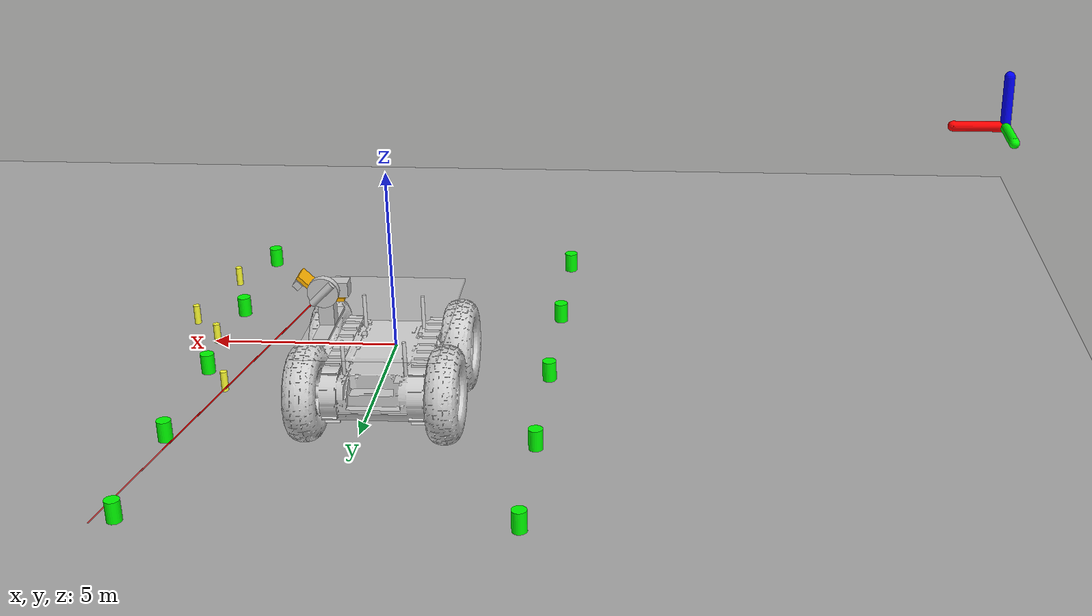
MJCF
<mujoco>
	<compiler angle="radian"
			inertiafromgeom="auto"
			texturedir="textures/"/>
	<option timestep="2e-3"
			iterations="35"
			tolerance="1e-10"
			impratio="20"
			cone="elliptic" />
	<size njmax="10000" nconmax="5000" nstack="15000000"/>

	<asset>
		<!--Textures-->
		<texture name="ur5_tex"     type="2d"       builtin="flat" height="32" width="32" rgb1=".3 .3 .3" />
		<texture name="gripper_tex" type="2d"       builtin="flat" height="32" width="32" rgb1="0.45 0.45 0.45" rgb2="0 0 0"/>
		<texture name="bench_tex"   type="2d"       builtin="flat" height="32" width="32" rgb1="0.7 0.7 0.7" />
		<texture name="sky_tex"     type="skybox"   builtin="gradient" width="100" height="100" rgb1="1 1 1" rgb2="0.3 0.3 0.8" />
		<texture name="texgeom"     type="cube"     builtin="flat" mark="cross" width="127" height="1278" rgb1="0.8 0.6 0.4" rgb2="0.8 0.6 0.4" markrgb="1 1 1" random="0.01" />
		<texture name="floor_tex"   type="2d"        builtin="checker" rgb1=".3 .4 .5" rgb2=".2 .3 .4" width="100" height="100" />
		<texture name="wood"        type="cube"     file="wood2.png"/>
		<texture name="metal"        type="cube"     file="metal2.png"/>
		<!--Materials-->
		<material name="ur5_mat"        texture="ur5_tex"   shininess="0.9" specular="0.75" reflectance="0.3"/>
		<material name="gripper_mat"    texture="gripper_tex"   shininess="0.9" specular="0.75" reflectance="0.4"/>
		<material name='floor_mat'      texture="floor_tex"  shininess="0.8" texrepeat="10 10" specular="0.7"  reflectance="0.05" />
		<material name='geom'           texture="texgeom"   texuniform="true" />
		<material name="bench_mat"      texture="metal"   shininess="0.1" specular="0.5" reflectance="0.2"/>
		<material name="tablecube"      texture="wood" rgba=".8 .8 .8 1"/>

  		<mesh file='rover.stl' name="rover" scale='0.01 0.01 0.01' />
  		<mesh file="4WDCore.stl" name="core"/>
  		<mesh file="LeftRearWheel.stl" name="left_rear" />
  		<mesh file="RightFrontWheel.stl" name="right_front" />
  		<mesh file="LeftFrontWheel.stl" name="left_front" />
  		<mesh file="RightRearWheel.stl" name="right_rear" />

	</asset>

	<default>
		<geom contype='1' conaffinity='1' condim='6' solref="6e-3 2" solimp=".99 .995 .01" friction="0.5 0.01 0.0005" rgba="0.8 0.8 0.8 1" />
		<joint damping='0.05' frictionloss='0.3'/>
		<default class="Objects">
			<joint type='free' damping='0.05' />
		</default>
		<default class="World">
			<geom condim='6' solref="5e-3 1.4" solimp=".99 .995 .01" friction="0.9 0.005 0.0001" />
		</default>
	</default>

	<visual>
		<map fogstart="3" fogend="5" znear="0.01" shadowclip='0.6' />
		<quality shadowsize="16384"/>
		<scale  framelength=".2"
		framewidth="0.01"
		contactwidth="1.1"
		contactheight="0.01"
		forcewidth="0.01"
		/>
	</visual>

	<worldbody>
		<!--Lighting parameters-->
		<light name="light1" pos="0 0 100" dir='0 0 -1' />

		<geom type='capsule' size='0.2 1' pos='-19 -20 0' rgba='1 0 0 1' quat='0.7071068  0 0.7071068 0' />
		<geom type='capsule' size='0.2 1' pos='-20 -19 0' rgba='0 1 0 1' quat='0.7071068  0.7071068 0 0' />
		<geom type='capsule' size='0.2 1' pos='-20 -20 1' rgba='0 0 1 1' />

		<!--Floor Property-->
		<geom name='floor' pos='0 0 -2' size='20 20 0.1'  type='plane' material="floor_mat" class="World" />

		<!-- Fixed Camera -->
		<camera name='c1' fovy="6" pos="0 0 100" euler="0 0 0" >
		</camera>

		<camera name='c2' fovy="40" pos="-14 -13 15" euler="0.8 -0.8 -.5" >
		</camera>

		<body name="rover" pos="0 0 0" >
			<joint name="rover" type="free"/>
			<geom material="ur5_mat" mesh="rover" name="rover" type="mesh" quat="0.7071068 0.7071068 0 0"/>

			<!-- platform pillars -->
			<geom type="cylinder" fromto=" 0.795 0     0.5  0.795 0     1.48" size="0.05 0.4"/>
			<geom type="cylinder" fromto="-0.795 0     0.5 -0.795 0     1.48" size="0.05 0.4"/>
			<geom type="cylinder" fromto=" 0.795 2.835 0.5  0.795 2.835 1.48" size="0.05 0.4"/>
			<geom type="cylinder" fromto="-0.795 2.835 0.5 -0.795 2.835 1.48" size="0.05 0.4"/>

			<!-- platform board -->
			<geom name="platform" type="box" pos="0 1.4 1.495" size="1.8 2.5 0.05" rgba="1 1 1 0.3" />

			<geom name="slider_base" type="box" pos="1.3 2 1.55" size="0.2 1 0.05"/>
			<body name="laser_slider" pos="1.3 2 1.6" >
				<joint name="laser_slider" type="slide" pos="0 1 0.05" axis="0 1 0" damping="45" limited="true" range="-1 1" />
				<geom type="box" pos="0 0 0.41" size="0.2 0.2 0.39" />
				<geom type="box" pos="-0.2 0 1" size="0.4 0.2 0.2" />
				<body name="laser_rotor" pos="0 0.45 1">
					<joint name="laser_rotor" type="hinge" axis="0 1 0" damping="15" limited="true" range="-3.14159 3.14159" />

					<geom type='cylinder' fromto="0 -0.25 0 0 -0.05 0" size="0.4" />
					<geom name='laser' type='cylinder' fromto="-0.27 0 0.27 0.27 0 -0.27" size="0.1" />
					<geom name="beam" type='cylinder' fromto="0 0 0 7 0 -7" size="0.02" density="0.00001" contype="0" conaffinity="0" rgba="1 0 0 1" />
				</body>
			</body>

			<body name="camera_base" pos="1.3 0 1.6">
				<geom type="box" pos="0.2 0.3 0" size="0.3 0.3 0.05" rgba="1 0.7 0 1" />
				<body name="camera" pos="0.8 0.3 0.3" quat="0.3826834 0 0.9238795  0" >
					<geom type="box" size="0.45 0.3 0.05" rgba="1 0.7 0 1" />
					<geom type="box" pos="-0.3 0 0.15" size="0.1 0.35 0.1" />
					<geom type="cylinder" pos="-0.3 0 0.25" size="0.1 0.02" rgba="0 0 0 1" />
					<camera name='c3' fovy="90" pos="0 0 0.1" euler="3.14159 0 1.5708" >
					</camera>
				</body>
			</body>
		</body>

		<body name="corn_0" pos="6 -6 -1.7" >
			<geom type="cylinder" size="0.2 0.3" rgba="0 1 0 1" />
			<geom type="cylinder" pos="0 -4 0" size="0.2 0.3" rgba="0 1 0 1" />
			<geom type="cylinder" pos="0 4 0" size="0.2 0.3" rgba="0 1 0 1" />
			<geom type="cylinder" pos="0 8 0" size="0.2 0.3" rgba="0 1 0 1" />
			<geom type="cylinder" pos="0 12 0" size="0.2 0.3" rgba="0 1 0 1" />
			<!-- weed -->
			<geom name="weed_0" type="cylinder" pos="0.8 -2.3 0" size="0.1 0.3" rgba="1 1 0.2 1" />
			<geom name="weed_1" type="cylinder" pos="-0.8 5.1 0" size="0.1 0.3" rgba="1 1 0.2 1" />
			<geom name="weed_2" type="cylinder" pos="0.3 2 0" size="0.1 0.3" rgba="1 1 0.2 1" />
			<geom name="weed_3" type="cylinder" pos="1.3 0.7 0" size="0.1 0.3" rgba="1 1 0.2 1" />
		</body>

		<body name="corn_1" pos="-4 -6 -1.7" >
			<geom type="cylinder" pos="0 -4 0" size="0.2 0.3" rgba="0 1 0 1" />
			<geom type="cylinder" pos="0 0 0" size="0.2 0.3" rgba="0 1 0 1" />
			<geom type="cylinder" pos="0 4 0" size="0.2 0.3" rgba="0 1 0 1" />
			<geom type="cylinder" pos="0 8 0" size="0.2 0.3" rgba="0 1 0 1" />
			<geom type="cylinder" pos="0 12 0" size="0.2 0.3" rgba="0 1 0 1" />
		</body>

	</worldbody>

	<actuator>
		<position name="laser_slider" ctrllimited="true" ctrlrange="-1 1" joint="laser_slider" kp="100" />
		<position name="laser_rotor" ctrllimited="true" ctrlrange="-1 1" joint="laser_rotor" kp="100"/>
	</actuator>

</mujoco>
